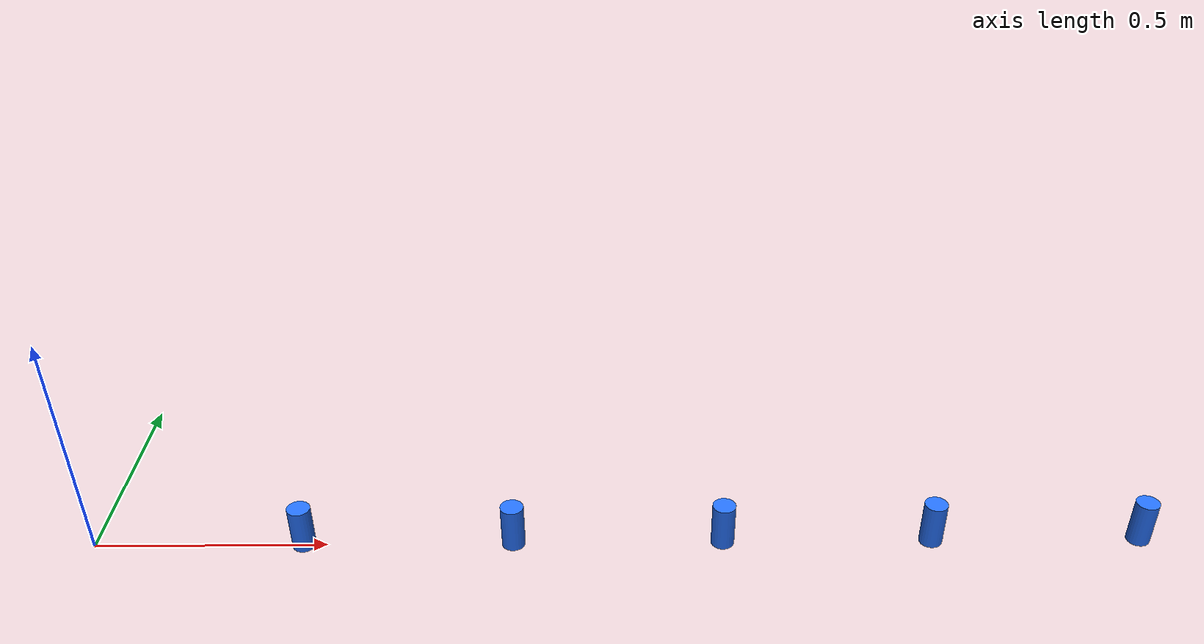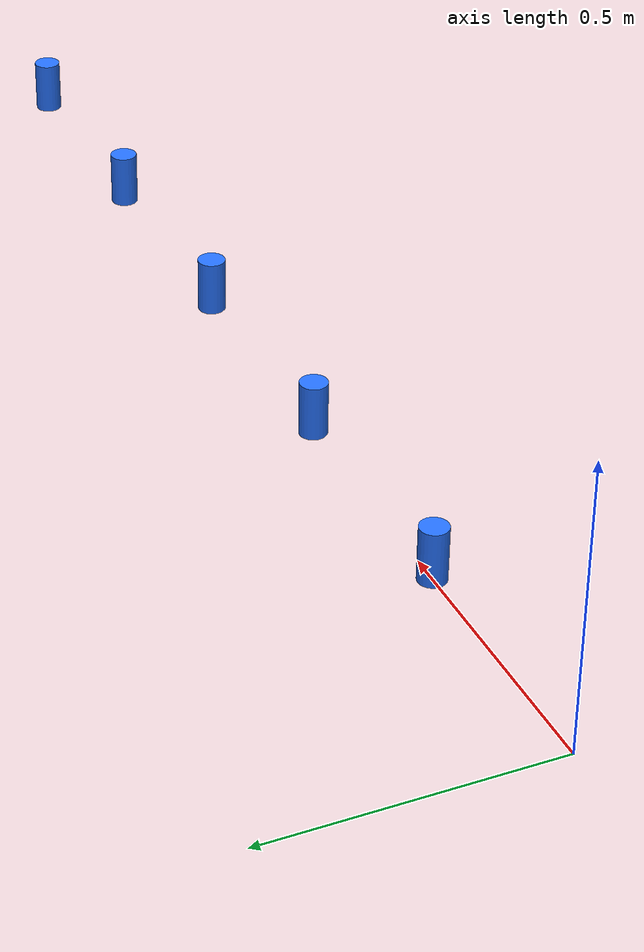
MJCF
<mujoco model="microduck_slalom_course">
    <compiler angle="radian" autolimits="true"/>

    <worldbody>
        <body name="slalom_course">
            <geom type="cylinder" name="slalom_cone_1" pos="0.45 0 0.05"
                  size="0.025 0.05" rgba="0.15 0.45 1 1" friction="0.8 0.005 0.0001"/>
            <geom type="cylinder" name="slalom_cone_2" pos="0.90 0 0.05"
                  size="0.025 0.05" rgba="0.15 0.45 1 1" friction="0.8 0.005 0.0001"/>
            <geom type="cylinder" name="slalom_cone_3" pos="1.35 0 0.05"
                  size="0.025 0.05" rgba="0.15 0.45 1 1" friction="0.8 0.005 0.0001"/>
            <geom type="cylinder" name="slalom_cone_4" pos="1.80 0 0.05"
                  size="0.025 0.05" rgba="0.15 0.45 1 1" friction="0.8 0.005 0.0001"/>
            <geom type="cylinder" name="slalom_cone_5" pos="2.25 0 0.05"
                  size="0.025 0.05" rgba="0.15 0.45 1 1" friction="0.8 0.005 0.0001"/>
        </body>
    </worldbody>
</mujoco>
